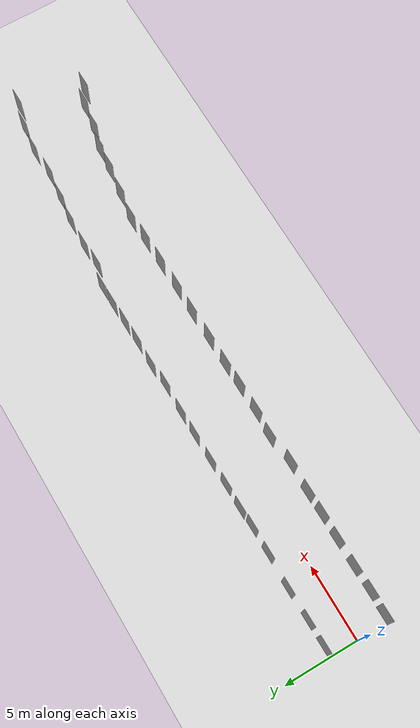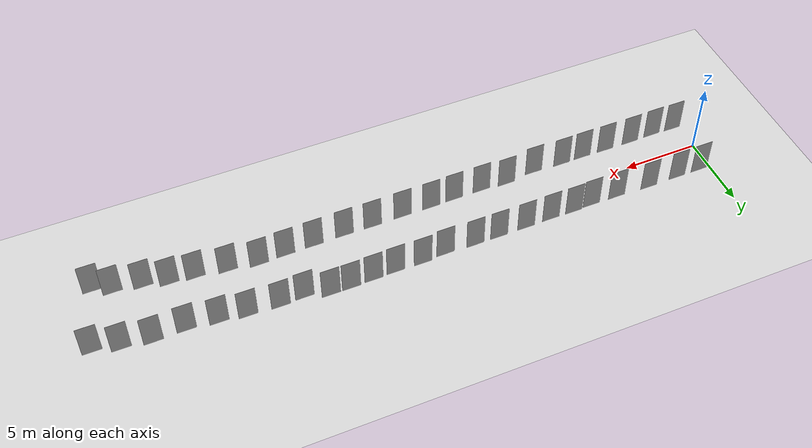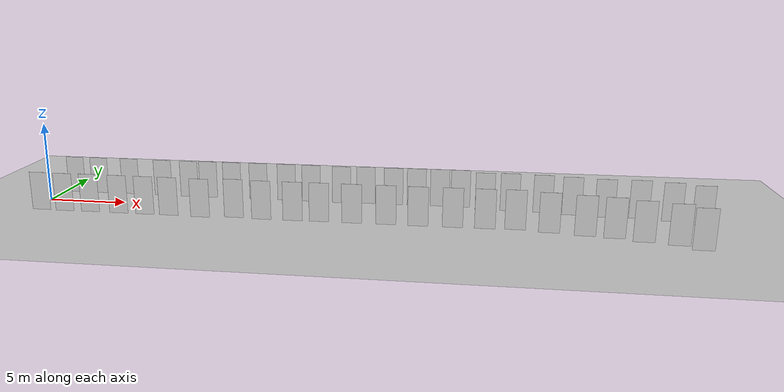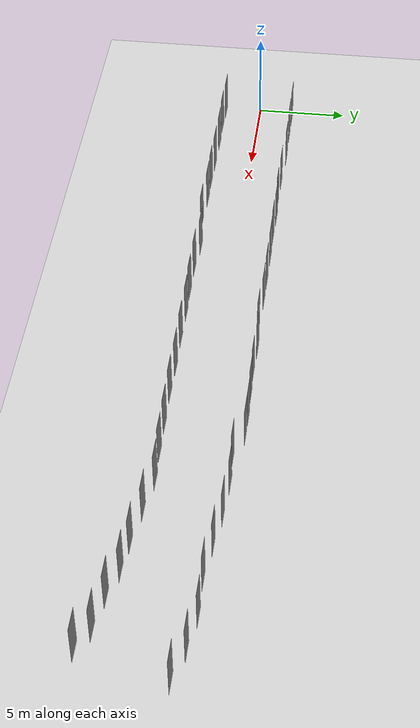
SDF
<sdf version="1.6">
 <world name="default">
  <light name="sun" type="directional">
   <pose>0 0 10 0 -0 0</pose>
   <diffuse>0.8 0.8 0.8 1</diffuse>
   <specular>0.1 0.1 0.1 1</specular>
   <attenuation>
    <range>1000</range>
    <constant>0.9</constant>
    <linear>0.01</linear>
    <quadratic>0.001</quadratic>
   </attenuation>
   <direction>-0.5 0.5 -1</direction>
  </light>
  <model name="ground_plane">
   <static>1</static>
   <link name="link">
    <collision name="collision">
     <geometry><plane><normal>0 0 1</normal><size>100 100</size></plane></geometry>
     <surface><friction><ode><mu>100</mu><mu2>50</mu2></ode></friction></surface>
    </collision>
    <visual name="visual">
     <cast_shadows>0</cast_shadows>
     <geometry><plane><normal>0 0 1</normal><size>100 100</size></plane></geometry>
     <material>
      <script><uri>file://media/materials/scripts/gazebo.material</uri><name>Gazebo/Grey</name></script>
     </material>
    </visual>
   </link>
  </model>
  <gravity>0 0 -9.8</gravity>
  <magnetic_field>6e-06 2.3e-05 -4.2e-05</magnetic_field>
  <atmosphere type="adiabatic"/>
  <physics name="default_physics" default="0" type="ode">
   <max_step_size>0.001</max_step_size>
   <real_time_factor>1</real_time_factor>
   <real_time_update_rate>1000</real_time_update_rate>
  </physics>
  <scene><ambient>0.4 0.4 0.4 1</ambient><background>0.7 0.7 0.7 1</background><shadows>1</shadows></scene>
  <spherical_coordinates>
   <surface_model>EARTH_WGS84</surface_model>
   <latitude_deg>0</latitude_deg>
   <longitude_deg>0</longitude_deg>
   <elevation>0</elevation>
   <heading_deg>0</heading_deg>
  </spherical_coordinates>
  <model name="nist_maze_wall_240">
   <static>1</static>
   <link name="nist__maze_wall_240_link">
    <collision name="collision">
     <geometry>
      <mesh><uri>model://nist_maze_wall_240/meshes/nist_maze_wall_240.dae</uri><scale>1 1 1</scale></mesh>
     </geometry>
    </collision>
    <visual name="visual">
     <geometry>
      <mesh><uri>model://nist_maze_wall_240/meshes/nist_maze_wall_240.dae</uri><scale>1 1 1</scale></mesh>
     </geometry>
    </visual>
   </link>
   <pose>0.434787 -2.60305 0 0 -0 0</pose>
  </model>
  <model name="nist_maze_wall_240_clone">
   <static>1</static>
   <link name="nist__maze_wall_240_link">
    <collision name="collision">
     <geometry>
      <mesh><uri>model://nist_maze_wall_240/meshes/nist_maze_wall_240.dae</uri><scale>1 1 1</scale></mesh>
     </geometry>
    </collision>
    <visual name="visual">
     <geometry>
      <mesh><uri>model://nist_maze_wall_240/meshes/nist_maze_wall_240.dae</uri><scale>1 1 1</scale></mesh>
     </geometry>
    </visual>
   </link>
   <pose>1.99641 -2.64184 0 0 -0 0</pose>
  </model>
  <model name="nist_maze_wall_240_clone_0">
   <static>1</static>
   <link name="nist__maze_wall_240_link">
    <collision name="collision">
     <geometry>
      <mesh><uri>model://nist_maze_wall_240/meshes/nist_maze_wall_240.dae</uri><scale>1 1 1</scale></mesh>
     </geometry>
    </collision>
    <visual name="visual">
     <geometry>
      <mesh><uri>model://nist_maze_wall_240/meshes/nist_maze_wall_240.dae</uri><scale>1 1 1</scale></mesh>
     </geometry>
    </visual>
   </link>
   <pose>3.67232 -2.61551 0 0 -0 0</pose>
  </model>
  <model name="nist_maze_wall_240_clone_1">
   <static>1</static>
   <link name="nist__maze_wall_240_link">
    <collision name="collision">
     <geometry>
      <mesh><uri>model://nist_maze_wall_240/meshes/nist_maze_wall_240.dae</uri><scale>1 1 1</scale></mesh>
     </geometry>
    </collision>
    <visual name="visual">
     <geometry>
      <mesh><uri>model://nist_maze_wall_240/meshes/nist_maze_wall_240.dae</uri><scale>1 1 1</scale></mesh>
     </geometry>
    </visual>
   </link>
   <pose>5.53733 -2.63248 0 0 -0 0</pose>
  </model>
  <model name="nist_maze_wall_240_clone_2">
   <static>1</static>
   <link name="nist__maze_wall_240_link">
    <collision name="collision">
     <geometry>
      <mesh><uri>model://nist_maze_wall_240/meshes/nist_maze_wall_240.dae</uri><scale>1 1 1</scale></mesh>
     </geometry>
    </collision>
    <visual name="visual">
     <geometry>
      <mesh><uri>model://nist_maze_wall_240/meshes/nist_maze_wall_240.dae</uri><scale>1 1 1</scale></mesh>
     </geometry>
    </visual>
   </link>
   <pose>7.24044 -2.66176 0 0 -0 0</pose>
  </model>
  <model name="nist_maze_wall_240_clone_3">
   <static>1</static>
   <link name="nist__maze_wall_240_link">
    <collision name="collision">
     <geometry>
      <mesh><uri>model://nist_maze_wall_240/meshes/nist_maze_wall_240.dae</uri><scale>1 1 1</scale></mesh>
     </geometry>
    </collision>
    <visual name="visual">
     <geometry>
      <mesh><uri>model://nist_maze_wall_240/meshes/nist_maze_wall_240.dae</uri><scale>1 1 1</scale></mesh>
     </geometry>
    </visual>
   </link>
   <pose>8.76998 -2.64909 0 0 -0 0</pose>
  </model>
  <model name="nist_maze_wall_240_clone_4">
   <static>1</static>
   <link name="nist__maze_wall_240_link">
    <collision name="collision">
     <geometry>
      <mesh><uri>model://nist_maze_wall_240/meshes/nist_maze_wall_240.dae</uri><scale>1 1 1</scale></mesh>
     </geometry>
    </collision>
    <visual name="visual">
     <geometry>
      <mesh><uri>model://nist_maze_wall_240/meshes/nist_maze_wall_240.dae</uri><scale>1 1 1</scale></mesh>
     </geometry>
    </visual>
   </link>
   <pose>10.7979 -2.72484 0 0 -0 0</pose>
  </model>
  <model name="nist_maze_wall_240_clone_5">
   <static>1</static>
   <link name="nist__maze_wall_240_link">
    <collision name="collision">
     <geometry>
      <mesh><uri>model://nist_maze_wall_240/meshes/nist_maze_wall_240.dae</uri><scale>1 1 1</scale></mesh>
     </geometry>
    </collision>
    <visual name="visual">
     <geometry>
      <mesh><uri>model://nist_maze_wall_240/meshes/nist_maze_wall_240.dae</uri><scale>1 1 1</scale></mesh>
     </geometry>
    </visual>
   </link>
   <pose>12.864 -2.51583 0 0 -0 0</pose>
  </model>
  <model name="nist_maze_wall_240_clone_6">
   <static>1</static>
   <link name="nist__maze_wall_240_link">
    <collision name="collision">
     <geometry>
      <mesh><uri>model://nist_maze_wall_240/meshes/nist_maze_wall_240.dae</uri><scale>1 1 1</scale></mesh>
     </geometry>
    </collision>
    <visual name="visual">
     <geometry>
      <mesh><uri>model://nist_maze_wall_240/meshes/nist_maze_wall_240.dae</uri><scale>1 1 1</scale></mesh>
     </geometry>
    </visual>
   </link>
   <pose>14.6032 -2.63067 0 0 -0 0</pose>
  </model>
  <model name="nist_maze_wall_240_clone_7">
   <static>1</static>
   <link name="nist__maze_wall_240_link">
    <collision name="collision">
     <geometry>
      <mesh><uri>model://nist_maze_wall_240/meshes/nist_maze_wall_240.dae</uri><scale>1 1 1</scale></mesh>
     </geometry>
    </collision>
    <visual name="visual">
     <geometry>
      <mesh><uri>model://nist_maze_wall_240/meshes/nist_maze_wall_240.dae</uri><scale>1 1 1</scale></mesh>
     </geometry>
    </visual>
   </link>
   <pose>16.5364 -2.62728 0 0 -0 0</pose>
  </model>
  <model name="nist_maze_wall_240_clone_8">
   <static>1</static>
   <link name="nist__maze_wall_240_link">
    <collision name="collision">
     <geometry>
      <mesh><uri>model://nist_maze_wall_240/meshes/nist_maze_wall_240.dae</uri><scale>1 1 1</scale></mesh>
     </geometry>
    </collision>
    <visual name="visual">
     <geometry>
      <mesh><uri>model://nist_maze_wall_240/meshes/nist_maze_wall_240.dae</uri><scale>1 1 1</scale></mesh>
     </geometry>
    </visual>
   </link>
   <pose>18.1412 -2.58883 0 0 -0 0</pose>
  </model>
  <model name="nist_maze_wall_240_clone_9">
   <static>1</static>
   <link name="nist__maze_wall_240_link">
    <collision name="collision">
     <geometry>
      <mesh><uri>model://nist_maze_wall_240/meshes/nist_maze_wall_240.dae</uri><scale>1 1 1</scale></mesh>
     </geometry>
    </collision>
    <visual name="visual">
     <geometry>
      <mesh><uri>model://nist_maze_wall_240/meshes/nist_maze_wall_240.dae</uri><scale>1 1 1</scale></mesh>
     </geometry>
    </visual>
   </link>
   <pose>0.765976 1.377 0 0 -0 0</pose>
  </model>
  <model name="nist_maze_wall_240_clone_10">
   <static>1</static>
   <link name="nist__maze_wall_240_link">
    <collision name="collision">
     <geometry>
      <mesh><uri>model://nist_maze_wall_240/meshes/nist_maze_wall_240.dae</uri><scale>1 1 1</scale></mesh>
     </geometry>
    </collision>
    <visual name="visual">
     <geometry>
      <mesh><uri>model://nist_maze_wall_240/meshes/nist_maze_wall_240.dae</uri><scale>1 1 1</scale></mesh>
     </geometry>
    </visual>
   </link>
   <pose>2.43332 1.37696 0 0 -0 0</pose>
  </model>
  <model name="nist_maze_wall_240_clone_11">
   <static>1</static>
   <link name="nist__maze_wall_240_link">
    <collision name="collision">
     <geometry>
      <mesh><uri>model://nist_maze_wall_240/meshes/nist_maze_wall_240.dae</uri><scale>1 1 1</scale></mesh>
     </geometry>
    </collision>
    <visual name="visual">
     <geometry>
      <mesh><uri>model://nist_maze_wall_240/meshes/nist_maze_wall_240.dae</uri><scale>1 1 1</scale></mesh>
     </geometry>
    </visual>
   </link>
   <pose>4.55106 1.40546 0 0 -0 0</pose>
  </model>
  <model name="nist_maze_wall_240_clone_12">
   <static>1</static>
   <link name="nist__maze_wall_240_link">
    <collision name="collision">
     <geometry>
      <mesh><uri>model://nist_maze_wall_240/meshes/nist_maze_wall_240.dae</uri><scale>1 1 1</scale></mesh>
     </geometry>
    </collision>
    <visual name="visual">
     <geometry>
      <mesh><uri>model://nist_maze_wall_240/meshes/nist_maze_wall_240.dae</uri><scale>1 1 1</scale></mesh>
     </geometry>
    </visual>
   </link>
   <pose>6.87791 1.32144 0 0 -0 0</pose>
  </model>
  <model name="nist_maze_wall_240_clone_13">
   <static>1</static>
   <link name="nist__maze_wall_240_link">
    <collision name="collision">
     <geometry>
      <mesh><uri>model://nist_maze_wall_240/meshes/nist_maze_wall_240.dae</uri><scale>1 1 1</scale></mesh>
     </geometry>
    </collision>
    <visual name="visual">
     <geometry>
      <mesh><uri>model://nist_maze_wall_240/meshes/nist_maze_wall_240.dae</uri><scale>1 1 1</scale></mesh>
     </geometry>
    </visual>
   </link>
   <pose>8.69281 1.29542 0 0 -0 0</pose>
  </model>
  <model name="nist_maze_wall_240_clone_14">
   <static>1</static>
   <link name="nist__maze_wall_240_link">
    <collision name="collision">
     <geometry>
      <mesh><uri>model://nist_maze_wall_240/meshes/nist_maze_wall_240.dae</uri><scale>1 1 1</scale></mesh>
     </geometry>
    </collision>
    <visual name="visual">
     <geometry>
      <mesh><uri>model://nist_maze_wall_240/meshes/nist_maze_wall_240.dae</uri><scale>1 1 1</scale></mesh>
     </geometry>
    </visual>
   </link>
   <pose>9.98625 1.35013 0 0 -0 0</pose>
  </model>
  <model name="nist_maze_wall_240_clone_15">
   <static>1</static>
   <link name="nist__maze_wall_240_link">
    <collision name="collision">
     <geometry>
      <mesh><uri>model://nist_maze_wall_240/meshes/nist_maze_wall_240.dae</uri><scale>1 1 1</scale></mesh>
     </geometry>
    </collision>
    <visual name="visual">
     <geometry>
      <mesh><uri>model://nist_maze_wall_240/meshes/nist_maze_wall_240.dae</uri><scale>1 1 1</scale></mesh>
     </geometry>
    </visual>
   </link>
   <pose>11.6071 1.32442 0 0 -0 0</pose>
  </model>
  <model name="nist_maze_wall_240_clone_16">
   <static>1</static>
   <link name="nist__maze_wall_240_link">
    <collision name="collision">
     <geometry>
      <mesh><uri>model://nist_maze_wall_240/meshes/nist_maze_wall_240.dae</uri><scale>1 1 1</scale></mesh>
     </geometry>
    </collision>
    <visual name="visual">
     <geometry>
      <mesh><uri>model://nist_maze_wall_240/meshes/nist_maze_wall_240.dae</uri><scale>1 1 1</scale></mesh>
     </geometry>
    </visual>
   </link>
   <pose>13.3709 1.35116 0 0 -0 0</pose>
  </model>
  <model name="nist_maze_wall_240_clone_17">
   <static>1</static>
   <link name="nist__maze_wall_240_link">
    <collision name="collision">
     <geometry>
      <mesh><uri>model://nist_maze_wall_240/meshes/nist_maze_wall_240.dae</uri><scale>1 1 1</scale></mesh>
     </geometry>
    </collision>
    <visual name="visual">
     <geometry>
      <mesh><uri>model://nist_maze_wall_240/meshes/nist_maze_wall_240.dae</uri><scale>1 1 1</scale></mesh>
     </geometry>
    </visual>
   </link>
   <pose>15.252 1.35178 0 0 -0 0</pose>
  </model>
  <model name="nist_maze_wall_240_clone_18">
   <static>1</static>
   <link name="nist__maze_wall_240_link">
    <collision name="collision">
     <geometry>
      <mesh><uri>model://nist_maze_wall_240/meshes/nist_maze_wall_240.dae</uri><scale>1 1 1</scale></mesh>
     </geometry>
    </collision>
    <visual name="visual">
     <geometry>
      <mesh><uri>model://nist_maze_wall_240/meshes/nist_maze_wall_240.dae</uri><scale>1 1 1</scale></mesh>
     </geometry>
    </visual>
   </link>
   <pose>16.8843 1.35226 0 0 -0 0</pose>
  </model>
  <model name="nist_maze_wall_240_clone_19">
   <static>1</static>
   <link name="nist__maze_wall_240_link">
    <collision name="collision">
     <geometry>
      <mesh><uri>model://nist_maze_wall_240/meshes/nist_maze_wall_240.dae</uri><scale>1 1 1</scale></mesh>
     </geometry>
    </collision>
    <visual name="visual">
     <geometry>
      <mesh><uri>model://nist_maze_wall_240/meshes/nist_maze_wall_240.dae</uri><scale>1 1 1</scale></mesh>
     </geometry>
    </visual>
   </link>
   <pose>18.8799 1.28154 0 0 -0 0</pose>
  </model>
  <model name="nist_maze_wall_240_clone_8_clone">
   <static>1</static>
   <link name="nist__maze_wall_240_link">
    <collision name="collision">
     <geometry>
      <mesh><uri>model://nist_maze_wall_240/meshes/nist_maze_wall_240.dae</uri><scale>1 1 1</scale></mesh>
     </geometry>
    </collision>
    <visual name="visual">
     <geometry>
      <mesh><uri>model://nist_maze_wall_240/meshes/nist_maze_wall_240.dae</uri><scale>1 1 1</scale></mesh>
     </geometry>
    </visual>
   </link>
   <pose>20.1127 -2.60136 0 0 -0 0</pose>
  </model>
  <model name="nist_maze_wall_240_clone_8_clone_0">
   <static>1</static>
   <link name="nist__maze_wall_240_link">
    <collision name="collision">
     <geometry>
      <mesh><uri>model://nist_maze_wall_240/meshes/nist_maze_wall_240.dae</uri><scale>1 1 1</scale></mesh>
     </geometry>
    </collision>
    <visual name="visual">
     <geometry>
      <mesh><uri>model://nist_maze_wall_240/meshes/nist_maze_wall_240.dae</uri><scale>1 1 1</scale></mesh>
     </geometry>
    </visual>
   </link>
   <pose>22.1623 -2.57579 0 0 -0 0</pose>
  </model>
  <model name="nist_maze_wall_240_clone_8_clone_1">
   <static>1</static>
   <link name="nist__maze_wall_240_link">
    <collision name="collision">
     <geometry>
      <mesh><uri>model://nist_maze_wall_240/meshes/nist_maze_wall_240.dae</uri><scale>1 1 1</scale></mesh>
     </geometry>
    </collision>
    <visual name="visual">
     <geometry>
      <mesh><uri>model://nist_maze_wall_240/meshes/nist_maze_wall_240.dae</uri><scale>1 1 1</scale></mesh>
     </geometry>
    </visual>
   </link>
   <pose>24.0527 -2.60091 0 0 -0 0</pose>
  </model>
  <model name="nist_maze_wall_240_clone_8_clone_2">
   <static>1</static>
   <link name="nist__maze_wall_240_link">
    <collision name="collision">
     <geometry>
      <mesh><uri>model://nist_maze_wall_240/meshes/nist_maze_wall_240.dae</uri><scale>1 1 1</scale></mesh>
     </geometry>
    </collision>
    <visual name="visual">
     <geometry>
      <mesh><uri>model://nist_maze_wall_240/meshes/nist_maze_wall_240.dae</uri><scale>1 1 1</scale></mesh>
     </geometry>
    </visual>
   </link>
   <pose>26.0811 -2.57007 0 0 -0 0</pose>
  </model>
  <model name="nist_maze_wall_240_clone_8_clone_3">
   <static>1</static>
   <link name="nist__maze_wall_240_link">
    <collision name="collision">
     <geometry>
      <mesh><uri>model://nist_maze_wall_240/meshes/nist_maze_wall_240.dae</uri><scale>1 1 1</scale></mesh>
     </geometry>
    </collision>
    <visual name="visual">
     <geometry>
      <mesh><uri>model://nist_maze_wall_240/meshes/nist_maze_wall_240.dae</uri><scale>1 1 1</scale></mesh>
     </geometry>
    </visual>
   </link>
   <pose>27.9577 -2.54604 0 0 -0 0</pose>
  </model>
  <model name="nist_maze_wall_240_clone_8_clone_4">
   <static>1</static>
   <link name="nist__maze_wall_240_link">
    <collision name="collision">
     <geometry>
      <mesh><uri>model://nist_maze_wall_240/meshes/nist_maze_wall_240.dae</uri><scale>1 1 1</scale></mesh>
     </geometry>
    </collision>
    <visual name="visual">
     <geometry>
      <mesh><uri>model://nist_maze_wall_240/meshes/nist_maze_wall_240.dae</uri><scale>1 1 1</scale></mesh>
     </geometry>
    </visual>
   </link>
   <pose>29.6931 -2.48535 0 0 -0 0</pose>
  </model>
  <model name="nist_maze_wall_240_clone_8_clone_5">
   <static>1</static>
   <link name="nist__maze_wall_240_link">
    <collision name="collision">
     <geometry>
      <mesh><uri>model://nist_maze_wall_240/meshes/nist_maze_wall_240.dae</uri><scale>1 1 1</scale></mesh>
     </geometry>
    </collision>
    <visual name="visual">
     <geometry>
      <mesh><uri>model://nist_maze_wall_240/meshes/nist_maze_wall_240.dae</uri><scale>1 1 1</scale></mesh>
     </geometry>
    </visual>
   </link>
   <pose>20.4401 1.40326 0 0 -0 0</pose>
  </model>
  <model name="nist_maze_wall_240_clone_8_clone_6">
   <static>1</static>
   <link name="nist__maze_wall_240_link">
    <collision name="collision">
     <geometry>
      <mesh><uri>model://nist_maze_wall_240/meshes/nist_maze_wall_240.dae</uri><scale>1 1 1</scale></mesh>
     </geometry>
    </collision>
    <visual name="visual">
     <geometry>
      <mesh><uri>model://nist_maze_wall_240/meshes/nist_maze_wall_240.dae</uri><scale>1 1 1</scale></mesh>
     </geometry>
    </visual>
   </link>
   <pose>22.2318 1.36489 0 0 -0 0</pose>
  </model>
  <model name="nist_maze_wall_240_clone_8_clone_7">
   <static>1</static>
   <link name="nist__maze_wall_240_link">
    <collision name="collision">
     <geometry>
      <mesh><uri>model://nist_maze_wall_240/meshes/nist_maze_wall_240.dae</uri><scale>1 1 1</scale></mesh>
     </geometry>
    </collision>
    <visual name="visual">
     <geometry>
      <mesh><uri>model://nist_maze_wall_240/meshes/nist_maze_wall_240.dae</uri><scale>1 1 1</scale></mesh>
     </geometry>
    </visual>
   </link>
   <pose>23.6929 1.40744 0 0 -0 0</pose>
  </model>
  <model name="nist_maze_wall_240_clone_8_clone_8">
   <static>1</static>
   <link name="nist__maze_wall_240_link">
    <collision name="collision">
     <geometry>
      <mesh><uri>model://nist_maze_wall_240/meshes/nist_maze_wall_240.dae</uri><scale>1 1 1</scale></mesh>
     </geometry>
    </collision>
    <visual name="visual">
     <geometry>
      <mesh><uri>model://nist_maze_wall_240/meshes/nist_maze_wall_240.dae</uri><scale>1 1 1</scale></mesh>
     </geometry>
    </visual>
   </link>
   <pose>25.1649 1.45027 0 0 -0 0</pose>
  </model>
  <model name="nist_maze_wall_240_clone_8_clone_9">
   <static>1</static>
   <link name="nist__maze_wall_240_link">
    <collision name="collision">
     <geometry>
      <mesh><uri>model://nist_maze_wall_240/meshes/nist_maze_wall_240.dae</uri><scale>1 1 1</scale></mesh>
     </geometry>
    </collision>
    <visual name="visual">
     <geometry>
      <mesh><uri>model://nist_maze_wall_240/meshes/nist_maze_wall_240.dae</uri><scale>1 1 1</scale></mesh>
     </geometry>
    </visual>
   </link>
   <pose>26.4714 1.44521 0 0 -0 0</pose>
  </model>
  <model name="nist_maze_wall_240_clone_8_clone_10">
   <static>1</static>
   <link name="nist__maze_wall_240_link">
    <collision name="collision">
     <geometry>
      <mesh><uri>model://nist_maze_wall_240/meshes/nist_maze_wall_240.dae</uri><scale>1 1 1</scale></mesh>
     </geometry>
    </collision>
    <visual name="visual">
     <geometry>
      <mesh><uri>model://nist_maze_wall_240/meshes/nist_maze_wall_240.dae</uri><scale>1 1 1</scale></mesh>
     </geometry>
    </visual>
   </link>
   <pose>28 1 0 0 -0 0</pose>
  </model>
  <model name="nist_maze_wall_240_clone_8_clone_11">
   <static>1</static>
   <link name="nist__maze_wall_240_link">
    <collision name="collision">
     <geometry>
      <mesh><uri>model://nist_maze_wall_240/meshes/nist_maze_wall_240.dae</uri><scale>1 1 1</scale></mesh>
     </geometry>
    </collision>
    <visual name="visual">
     <geometry>
      <mesh><uri>model://nist_maze_wall_240/meshes/nist_maze_wall_240.dae</uri><scale>1 1 1</scale></mesh>
     </geometry>
    </visual>
   </link>
   <pose>29.5367 1.07014 0 0 -0 0</pose>
  </model>
  <model name="nist_maze_wall_240_clone_8_clone_12">
   <static>1</static>
   <link name="nist__maze_wall_240_link">
    <collision name="collision">
     <geometry>
      <mesh><uri>model://nist_maze_wall_240/meshes/nist_maze_wall_240.dae</uri><scale>1 1 1</scale></mesh>
     </geometry>
    </collision>
    <visual name="visual">
     <geometry>
      <mesh><uri>model://nist_maze_wall_240/meshes/nist_maze_wall_240.dae</uri><scale>1 1 1</scale></mesh>
     </geometry>
    </visual>
   </link>
   <pose>31.5986 -2.77445 0 0 -0 0</pose>
  </model>
  <model name="nist_maze_wall_240_clone_8_clone_13">
   <static>1</static>
   <link name="nist__maze_wall_240_link">
    <collision name="collision">
     <geometry>
      <mesh><uri>model://nist_maze_wall_240/meshes/nist_maze_wall_240.dae</uri><scale>1 1 1</scale></mesh>
     </geometry>
    </collision>
    <visual name="visual">
     <geometry>
      <mesh><uri>model://nist_maze_wall_240/meshes/nist_maze_wall_240.dae</uri><scale>1 1 1</scale></mesh>
     </geometry>
    </visual>
   </link>
   <pose>33.5686 -3.05842 0 0 -0 0</pose>
  </model>
  <model name="nist_maze_wall_240_clone_8_clone_14">
   <static>1</static>
   <link name="nist__maze_wall_240_link">
    <collision name="collision">
     <geometry>
      <mesh><uri>model://nist_maze_wall_240/meshes/nist_maze_wall_240.dae</uri><scale>1 1 1</scale></mesh>
     </geometry>
    </collision>
    <visual name="visual">
     <geometry>
      <mesh><uri>model://nist_maze_wall_240/meshes/nist_maze_wall_240.dae</uri><scale>1 1 1</scale></mesh>
     </geometry>
    </visual>
   </link>
   <pose>35.1617 -3.23434 0 0 -0 0</pose>
  </model>
  <model name="nist_maze_wall_240_clone_8_clone_15">
   <static>1</static>
   <link name="nist__maze_wall_240_link">
    <collision name="collision">
     <geometry>
      <mesh><uri>model://nist_maze_wall_240/meshes/nist_maze_wall_240.dae</uri><scale>1 1 1</scale></mesh>
     </geometry>
    </collision>
    <visual name="visual">
     <geometry>
      <mesh><uri>model://nist_maze_wall_240/meshes/nist_maze_wall_240.dae</uri><scale>1 1 1</scale></mesh>
     </geometry>
    </visual>
   </link>
   <pose>36.6744 -3.64879 0 0 -0 0</pose>
  </model>
  <model name="nist_maze_wall_240_clone_8_clone_16">
   <static>1</static>
   <link name="nist__maze_wall_240_link">
    <collision name="collision">
     <geometry>
      <mesh><uri>model://nist_maze_wall_240/meshes/nist_maze_wall_240.dae</uri><scale>1 1 1</scale></mesh>
     </geometry>
    </collision>
    <visual name="visual">
     <geometry>
      <mesh><uri>model://nist_maze_wall_240/meshes/nist_maze_wall_240.dae</uri><scale>1 1 1</scale></mesh>
     </geometry>
    </visual>
   </link>
   <pose>38.4941 -3.94746 0 0 -0 0</pose>
  </model>
  <model name="nist_maze_wall_240_clone_8_clone_17">
   <static>1</static>
   <link name="nist__maze_wall_240_link">
    <collision name="collision">
     <geometry>
      <mesh><uri>model://nist_maze_wall_240/meshes/nist_maze_wall_240.dae</uri><scale>1 1 1</scale></mesh>
     </geometry>
    </collision>
    <visual name="visual">
     <geometry>
      <mesh><uri>model://nist_maze_wall_240/meshes/nist_maze_wall_240.dae</uri><scale>1 1 1</scale></mesh>
     </geometry>
    </visual>
   </link>
   <pose>31.5453 0.968208 0 0 -0 0</pose>
  </model>
  <model name="nist_maze_wall_240_clone_8_clone_18">
   <static>1</static>
   <link name="nist__maze_wall_240_link">
    <collision name="collision">
     <geometry>
      <mesh><uri>model://nist_maze_wall_240/meshes/nist_maze_wall_240.dae</uri><scale>1 1 1</scale></mesh>
     </geometry>
    </collision>
    <visual name="visual">
     <geometry>
      <mesh><uri>model://nist_maze_wall_240/meshes/nist_maze_wall_240.dae</uri><scale>1 1 1</scale></mesh>
     </geometry>
    </visual>
   </link>
   <pose>33.2676 0.738518 0 0 -0 0</pose>
  </model>
  <model name="nist_maze_wall_240_clone_8_clone_19">
   <static>1</static>
   <link name="nist__maze_wall_240_link">
    <collision name="collision">
     <geometry>
      <mesh><uri>model://nist_maze_wall_240/meshes/nist_maze_wall_240.dae</uri><scale>1 1 1</scale></mesh>
     </geometry>
    </collision>
    <visual name="visual">
     <geometry>
      <mesh><uri>model://nist_maze_wall_240/meshes/nist_maze_wall_240.dae</uri><scale>1 1 1</scale></mesh>
     </geometry>
    </visual>
   </link>
   <pose>35.2016 0.525953 0 0 -0 0</pose>
  </model>
  <model name="nist_maze_wall_240_clone_8_clone_20">
   <static>1</static>
   <link name="nist__maze_wall_240_link">
    <collision name="collision">
     <geometry>
      <mesh><uri>model://nist_maze_wall_240/meshes/nist_maze_wall_240.dae</uri><scale>1 1 1</scale></mesh>
     </geometry>
    </collision>
    <visual name="visual">
     <geometry>
      <mesh><uri>model://nist_maze_wall_240/meshes/nist_maze_wall_240.dae</uri><scale>1 1 1</scale></mesh>
     </geometry>
    </visual>
   </link>
   <pose>37.2203 0.572845 0 0 -0 0</pose>
  </model>
  <model name="nist_maze_wall_240_clone_8_clone_21">
   <static>1</static>
   <link name="nist__maze_wall_240_link">
    <collision name="collision">
     <geometry>
      <mesh><uri>model://nist_maze_wall_240/meshes/nist_maze_wall_240.dae</uri><scale>1 1 1</scale></mesh>
     </geometry>
    </collision>
    <visual name="visual">
     <geometry>
      <mesh><uri>model://nist_maze_wall_240/meshes/nist_maze_wall_240.dae</uri><scale>1 1 1</scale></mesh>
     </geometry>
    </visual>
   </link>
   <pose>39.0709 0.304631 0 0 -0 0</pose>
  </model>
  <model name="nist_maze_wall_240_clone_8_clone_22">
   <static>1</static>
   <link name="nist__maze_wall_240_link">
    <collision name="collision">
     <geometry>
      <mesh><uri>model://nist_maze_wall_240/meshes/nist_maze_wall_240.dae</uri><scale>1 1 1</scale></mesh>
     </geometry>
    </collision>
    <visual name="visual">
     <geometry>
      <mesh><uri>model://nist_maze_wall_240/meshes/nist_maze_wall_240.dae</uri><scale>1 1 1</scale></mesh>
     </geometry>
    </visual>
   </link>
   <pose>40.6971 -0.16129 0 0 -0 0</pose>
  </model>
  <model name="nist_maze_wall_240_clone_8_clone_23">
   <static>1</static>
   <link name="nist__maze_wall_240_link">
    <collision name="collision">
     <geometry>
      <mesh><uri>model://nist_maze_wall_240/meshes/nist_maze_wall_240.dae</uri><scale>1 1 1</scale></mesh>
     </geometry>
    </collision>
    <visual name="visual">
     <geometry>
      <mesh><uri>model://nist_maze_wall_240/meshes/nist_maze_wall_240.dae</uri><scale>1 1 1</scale></mesh>
     </geometry>
    </visual>
   </link>
   <pose>39.5896 -4.55116 0 0 -0 0</pose>
  </model>
 </world>
</sdf>
